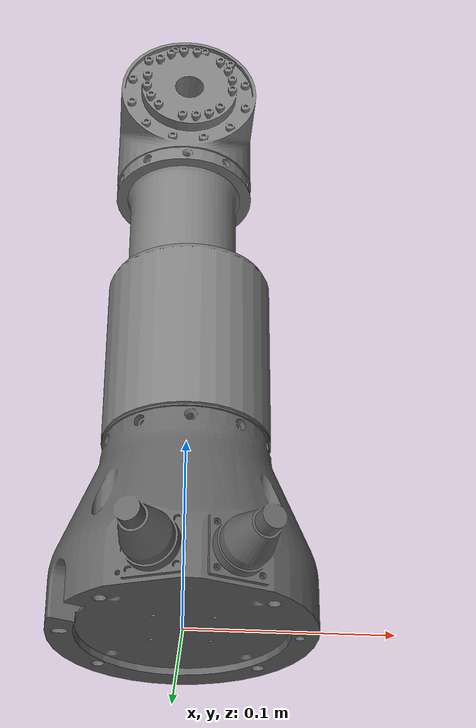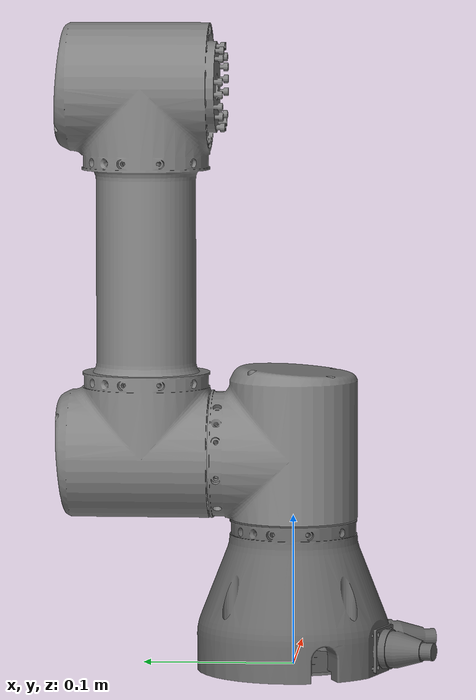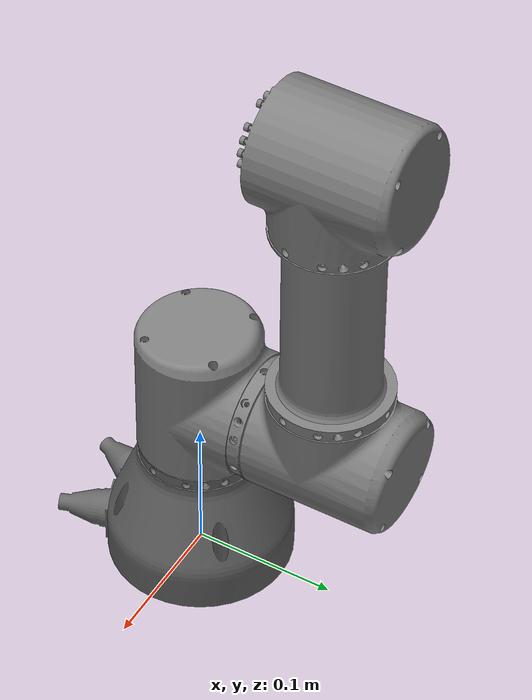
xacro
<?xml version="1.0"?>
<robot xmlns:xacro="http://www.ros.org/wiki/xacro" name="eRobo3">
    <xacro:arg name="initial_positions_file" default="initial_positions.yaml" />

    <!-- Import eRobo3 urdf file -->
    <xacro:include filename="$(find erob_arm)/urdf/erob2_motor.urdf" />

    <!-- Import control_xacro -->
    <xacro:include filename="eRobo3.ros2_control.xacro" />

    <xacro:eRobo3_ros2_control name="FakeSystem" initial_positions_file="$(arg initial_positions_file)"/>

</robot>

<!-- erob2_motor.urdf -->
<robot name="eRobo3" version="1.0">
  <joint name="Joint_1" type="revolute">
    <safety_controller k_position="100.0" k_velocity="40.0" soft_lower_limit="-2.8973" soft_upper_limit="2.8973" />
    <origin rpy="0.00000 0.00000 0.00000" xyz="0.00000 0.00000 0.00000"/>
    <parent link="base_link"/>
    <child link="Link_1"/>
    <axis xyz="0.00000 0.00000 1.00000"/>
    <limit effort="87" lower="-2.9671" upper="2.9671" velocity="2.3925" />
  </joint>
  <joint name="Joint_2" type="revolute">
    <safety_controller k_position="100.0" k_velocity="40.0" soft_lower_limit="-1.7628" soft_upper_limit="1.7628" />
    <origin rpy="0.00000 0.00000 0.00000" xyz="0.00000 0.05300 0.14050"/>
    <parent link="Link_1"/>
    <child link="Link_2"/>
    <axis xyz="0.00000 -1.00000 0.00000"/>
    <limit effort="87" lower="-1.8326" upper="1.8326" velocity="2.3925" />
  </joint>

  <link name="Link_1">
    <collision name="Link_1_collision">
      <origin rpy="0.00000 0.00000 0.00000" xyz="0.00000 0.00000 0.00000"/>
      <geometry>
        <mesh filename="package://erob_arm/meshes/Link_1.stl" scale="1.00000 1.00000 1.00000"/>
      </geometry>
    </collision>
    <inertial>
      <inertia ixx="0.00054" ixy="0.00000" ixz="0.00000" iyy="0.00052" iyz="0.00000" izz="0.00054"/>
      <origin rpy="0.00000 0.00000 0.00000" xyz="0.00000 0.00308 0.13617"/>
      <mass value="0.50622"/>
    </inertial>
    <visual name="Link_1_visual">
      <origin rpy="0.00000 0.00000 0.00000" xyz="0.00000 0.00000 0.00000"/>
      <material name="#ffffffff"/>
      <geometry>
        <mesh filename="package://erob_arm/meshes/Link_1.stl" scale="1.00000 1.00000 1.00000"/>
      </geometry>
    </visual>
  </link>
  <link name="Link_2">
    <collision name="Link_2_collision">
      <origin rpy="0.00000 0.00000 0.00000" xyz="0.00000 0.00000 0.00000"/>
      <geometry>
        <mesh filename="package://erob_arm/meshes/Link_2.stl" scale="1.00000 1.00000 1.00000"/>
      </geometry>
    </collision>
    <inertial>
      <inertia ixx="0.00157" ixy="0.00000" ixz="0.00000" iyy="0.00156" iyz="0.00000" izz="0.00119"/>
      <origin rpy="0.00000 0.00000 0.00000" xyz="0.00000 0.04217 0.11937"/>
      <mass value="1.16203"/>
    </inertial>
    <visual name="Link_2_visual">
      <origin rpy="0.00000 0.00000 0.00000" xyz="0.00000 0.00000 0.00000"/>
      <material name="#ffffffff"/>
      <geometry>
        <mesh filename="package://erob_arm/meshes/Link_2.stl" scale="1.00000 1.00000 1.00000"/>
      </geometry>
    </visual>
  </link>

  <link name="base_link">
    <collision name="base_link_collision">
      <origin rpy="0.00000 0.00000 0.00000" xyz="0.00000 0.00000 0.00000"/>
      <geometry>
        <mesh filename="package://erob_arm/meshes/base_link.stl" scale="1.00000 1.00000 1.00000"/>
      </geometry>
    </collision>
    <inertial>
      <inertia ixx="0.00083" ixy="0.00001" ixz="0.00001" iyy="0.00085" iyz="0.00003" izz="0.00110"/>
      <origin rpy="0.00000 0.00000 0.00000" xyz="0.00095 -0.00172 0.03600"/>
      <mass value="0.47602"/>
    </inertial>
    <visual name="base_link_visual">
      <origin rpy="0.00000 0.00000 0.00000" xyz="0.00000 0.00000 0.00000"/>
      <material name="base"/>
      <geometry>
        <mesh filename="package://erob_arm/meshes/base_link.stl" scale="1.00000 1.00000 1.00000"/>
      </geometry>
    </visual>
  </link>
  <material name="#ffffffff">
    <color rgba="0.50000 0.50000 0.50000 1.0000"/>
  </material>
    <material name="base">
    <color rgba="0.40000 0.40000 0.40000 1.0000"/>
  </material>
</robot>
